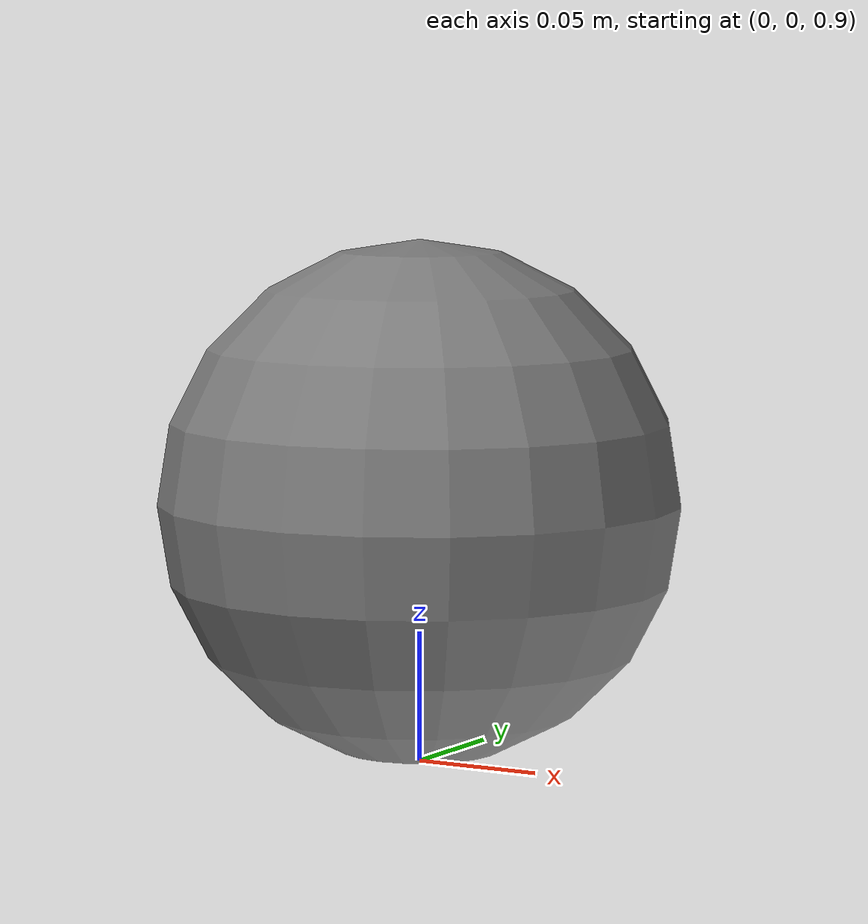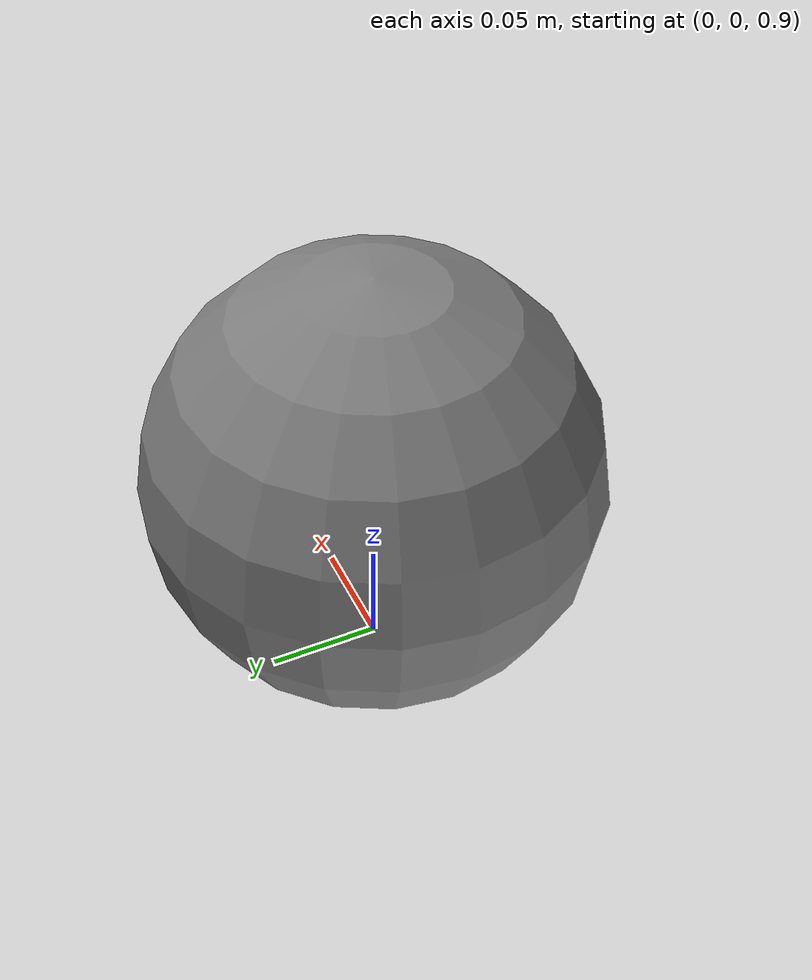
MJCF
<mujoco model="stable_frame_raycast_fixture">
  <worldbody>
    <geom name="floor" type="plane" size="5 5 0.1" pos="0 0 0"/>
    <body name="rig_root" pos="0 0 2">
      <body name="body_sensor_frame" pos="0 0 -1" quat="0.7071067811865476 0 0.7071067811865476 0"/>
      <site name="site_sensor_frame" pos="0 0 -1" size="0.001"/>
      <body name="self_occluder" pos="0 0 -1">
        <geom name="self_occluder_geom" type="sphere" size="0.1"/>
      </body>
      <body name="ambiguous_sensor_frame" pos="0 0 -1">
        <site name="ambiguous_sensor_frame" size="0.001"/>
      </body>
    </body>
  </worldbody>
</mujoco>
